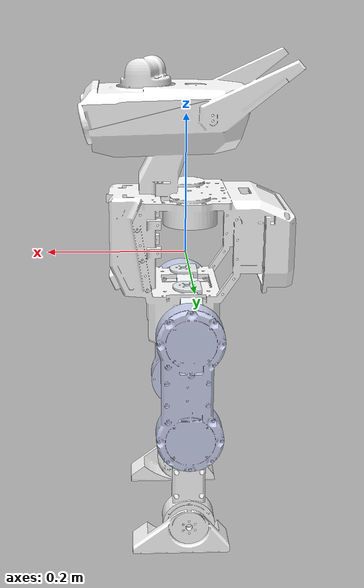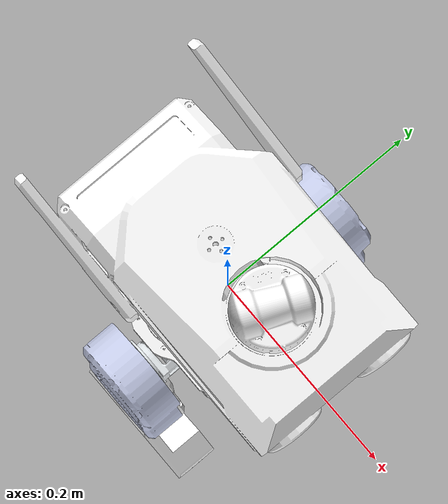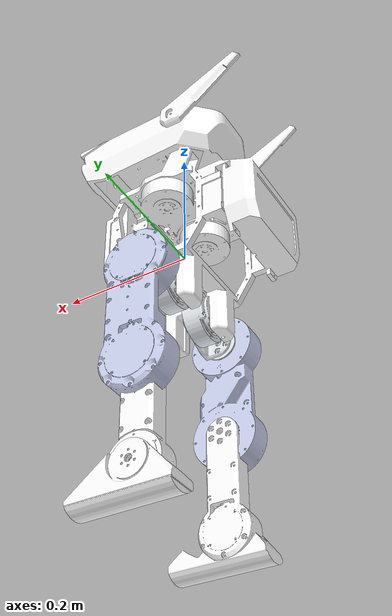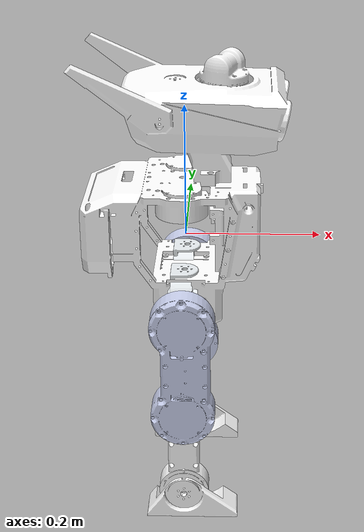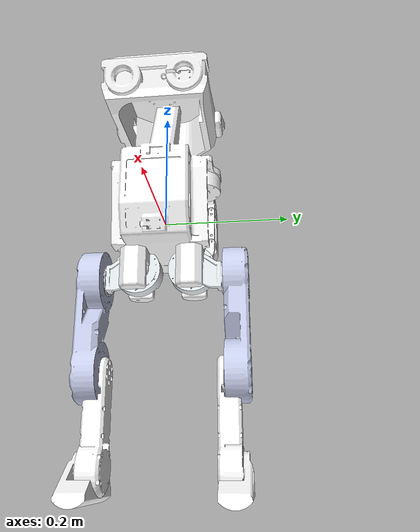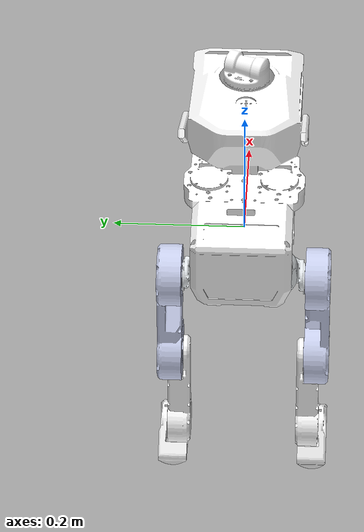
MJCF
<mujoco model="taitan">
    <compiler angle="radian" meshdir="../meshes/" />
    <size njmax="500" nconmax="100" />
    <asset>
        <mesh name="base_link" file="base_link.STL" />
        <mesh name="L0_Link" file="L0_Link.STL" />
        <mesh name="L1_Link" file="L1_Link.STL" />
        <mesh name="L2_Link" file="L2_Link.STL" />
        <mesh name="L3_Link" file="L3_Link.STL" />
        <mesh name="L4_Link" file="L4_Link.STL" />
        <mesh name="R0_Link" file="R0_Link.STL" />
        <mesh name="R1_Link" file="R1_Link.STL" />
        <mesh name="R2_Link" file="R2_Link.STL" />
        <mesh name="R3_Link" file="R3_Link.STL" />
        <mesh name="R4_Link" file="R4_Link.STL" />
    </asset>
    <worldbody>
        <geom type="mesh" contype="0" conaffinity="0" group="1" rgba="1 1 1 1" mesh="base_link" />
        <geom type="mesh" rgba="1 1 1 1" mesh="base_link" />
        <body name="L0_Link" pos="0 0.0444706 -0.0372">
            <inertial pos="-0.00294137 -2.54825e-05 -0.041079" mass="0.389944" diaginertia="0.0003 0.0002 0.0002" />
            <joint name="J_L0" pos="0 0 0" axis="0 0 1" limited="true" range="-0.6 0.6" />
            <geom type="mesh" contype="0" conaffinity="0" group="1" rgba="0.898039 0.917647 0.929412 1" mesh="L0_Link" />
            <geom type="mesh" rgba="0.898039 0.917647 0.929412 1" mesh="L0_Link" />
            <body name="L1_Link" pos="0.0104583 0 -0.0438695">
                <inertial pos="-0.000428254 0.0256328 -0.00860134" quat="0.707107 0.707107 0 0" mass="0.0748964" diaginertia="4.31603e-05 3.47985e-05 2.12457e-05" />
                <joint name="J_L1" pos="0 0 0" axis="-1 0 0" limited="true" range="-0.37 0.49" />
                <geom type="mesh" contype="0" conaffinity="0" group="1" rgba="0.898039 0.917647 0.929412 1" mesh="L1_Link" />
                <geom type="mesh" rgba="0.898039 0.917647 0.929412 1" mesh="L1_Link" />
                <body name="L2_Link" pos="-0.0119583 0.0498124 -0.0144835">
                    <inertial pos="0.000814289 0.0183404 -0.0736652" quat="0.707107 0 0 0.707107" mass="1.35024" diaginertia="0.0082 0.0075 0.0009" />
                    <joint name="J_L2" pos="0 0 0" axis="0 1 0" limited="true" range="-1.57 1.57" />
                    <geom type="mesh" contype="0" conaffinity="0" group="1" rgba="0.792157 0.819608 0.933333 1" mesh="L2_Link" />
                    <geom type="mesh" rgba="0.792157 0.819608 0.933333 1" mesh="L2_Link" />
                    <body name="L3_Link" pos="0 0.0025 -0.147378">
                        <inertial pos="-2.5603e-05 0.00525835 -0.11753" quat="0.706246 0.0348808 -0.0348808 0.706246" mass="0.511661" diaginertia="0.0012099 0.0011 0.000190098" />
                        <joint name="J_L3" pos="0 0 0" axis="0 1 0" limited="true" range="0 2.35" />
                        <geom type="mesh" contype="0" conaffinity="0" group="1" rgba="1 1 1 1" mesh="L3_Link" />
                        <geom type="mesh" rgba="1 1 1 1" mesh="L3_Link" />
                        <body name="L4_Link_ankel" pos="0 0.023 -0.140491">
                            <inertial pos="0.011854 -0.00567826 -0.0279832" quat="0.5 0.5 0.5 0.5" mass="0.153123" diaginertia="0.0003 0.0003 0.0001" />
                            <joint name="J_L4_ankel" pos="0 0 0" axis="0 -1 0" limited="true" range="-0.95 0.95" />
                            <geom type="mesh" contype="0" conaffinity="0" group="1" rgba="1 1 1 1" mesh="L4_Link" />
                            <geom type="mesh" rgba="1 1 1 1" mesh="L4_Link" />
                        </body>
                    </body>
                </body>
            </body>
        </body>
        <body name="R0_Link" pos="0 -0.0444706 -0.0377">
            <inertial pos="-0.00294137 -2.55329e-05 -0.040579" mass="0.389944" diaginertia="0.0003 0.0002 0.0002" />
            <joint name="J_R0" pos="0 0 0" axis="0 0 1" limited="true" range="-0.6 0.6" />
            <geom type="mesh" contype="0" conaffinity="0" group="1" rgba="0.898039 0.917647 0.929412 1" mesh="R0_Link" />
            <geom type="mesh" rgba="0.898039 0.917647 0.929412 1" mesh="R0_Link" />
            <body name="R1_Link" pos="0.0104583 0 -0.0433695">
                <inertial pos="-0.000417158 -0.025598 -0.00859271" quat="0.707107 0.707107 0 0" mass="0.0747885" diaginertia="4.30775e-05 3.47137e-05 2.12071e-05" />
                <joint name="J_R1" pos="0 0 0" axis="-1 0 0" limited="true" range="-0.49 0.37" />
                <geom type="mesh" contype="0" conaffinity="0" group="1" rgba="0.898039 0.917647 0.929412 1" mesh="R1_Link" />
                <geom type="mesh" rgba="0.898039 0.917647 0.929412 1" mesh="R1_Link" />
                <body name="R2_Link" pos="-0.0119583 -0.0522803 -0.0144835">
                    <inertial pos="0.000815124 -0.0158195 -0.0738433" quat="0.707107 0 0 0.707107" mass="1.34863" diaginertia="0.0082 0.0075 0.0009" />
                    <joint name="J_R2" pos="0 0 0" axis="0 -1 0" limited="true" range="-1.57 1.57" />
                    <geom type="mesh" contype="0" conaffinity="0" group="1" rgba="0.792157 0.819608 0.933333 1" mesh="R2_Link" />
                    <geom type="mesh" rgba="0.792157 0.819608 0.933333 1" mesh="R2_Link" />
                    <body name="R3_Link" pos="0 0 -0.147378">
                        <inertial pos="2.2154e-05 -0.00575835 -0.117628" quat="0.706246 -0.0348808 0.0348808 0.706246" mass="0.511661" diaginertia="0.0012099 0.0011 0.000190098" />
                        <joint name="J_R3" pos="0 0 0" axis="0 -1 0" limited="true" range="-2.35 0" />
                        <geom type="mesh" contype="0" conaffinity="0" group="1" rgba="1 1 1 1" mesh="R3_Link" />
                        <geom type="mesh" rgba="1 1 1 1" mesh="R3_Link" />
                        <body name="R4_Link_ankel" pos="0 -0.0235 -0.140629">
                            <inertial pos="0.0140716 0.00554706 -0.0279863" quat="0.5 0.5 0.5 0.5" mass="0.147848" diaginertia="0.0003 0.0003 0.0001" />
                            <joint name="J_R4_ankel" pos="0 0 0" axis="0 -1 0" limited="true" range="-0.95 0.95" />
                            <geom type="mesh" contype="0" conaffinity="0" group="1" rgba="1 1 1 1" mesh="R4_Link" />
                            <geom type="mesh" rgba="1 1 1 1" mesh="R4_Link" />
                        </body>
                    </body>
                </body>
            </body>
        </body>
    </worldbody>
</mujoco>
